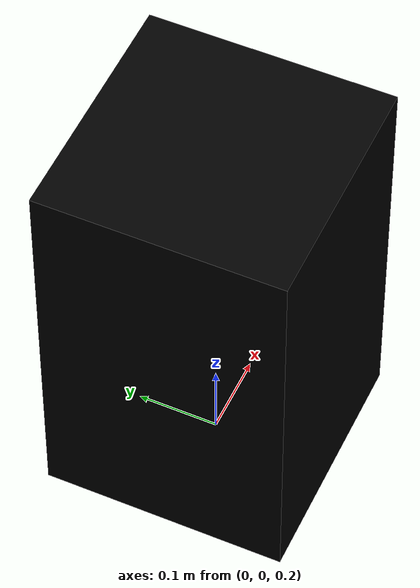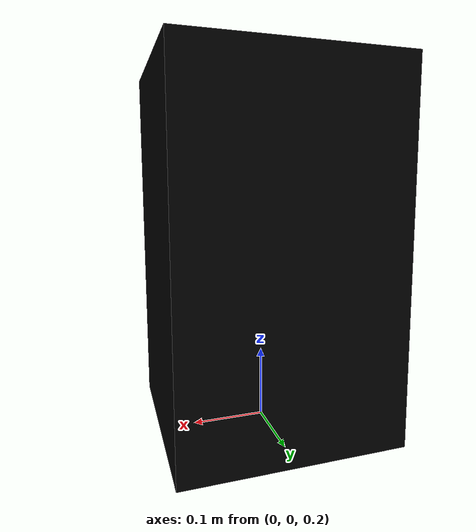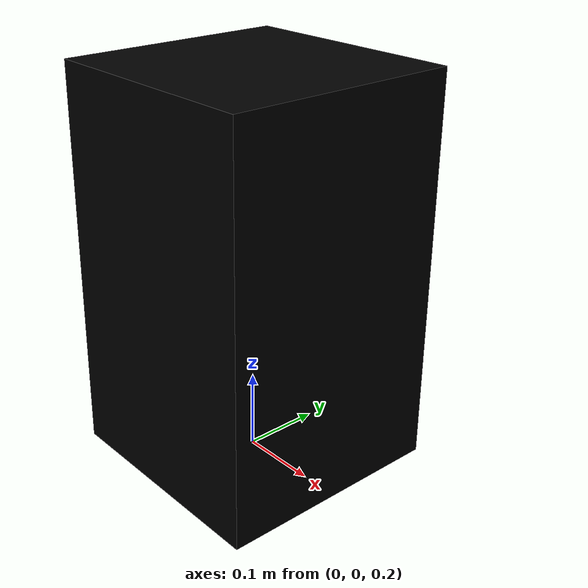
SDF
<sdf version='1.11'>
  <model name='wheeled_robot'>
    <link name='base_footprint_link'>
      <inertial>
        <pose>0 0 0.45000000000000001 0 0 0</pose>
        <mass>122.31</mass>
        <inertia>
          <ixx>3.465449999999997</ixx>
          <ixy>0</ixy>
          <ixz>0</ixz>
          <iyy>3.465449999999997</iyy>
          <iyz>0</iyz>
          <izz>1.8346499999999999</izz>
        </inertia>
      </inertial>
      <collision name='base_footprint_link_fixed_joint_lump__base_link_collision'>
        <pose>0 0 0.45000000000000001 0 0 0</pose>
        <geometry>
          <box>
            <size>0.29999999999999999 0.29999999999999999 0.5</size>
          </box>
        </geometry>
      </collision>
      <visual name='base_footprint_link_fixed_joint_lump__base_link_visual'>
        <pose>0 0 0.45000000000000001 0 0 0</pose>
        <geometry>
          <box>
            <size>0.29999999999999999 0.29999999999999999 0.5</size>
          </box>
        </geometry>
        <material>
          <diffuse>0 0 0 1</diffuse>
          <ambient>0 0 0 1</ambient>
        </material>
      </visual>
    </link>
    <plugin name='gz::sim::systems::JointStatePublisher' filename='gz-sim-joint-state-publisher-system'>
      <topic>joint_states</topic>
    </plugin>
    <frame name='base_footprint_base_joint' attached_to='base_footprint_link'>
      <pose>0 0 0.20000000000000001 0 0 0</pose>
    </frame>
    <frame name='base_link' attached_to='base_footprint_base_joint'>
      <pose>0 0 0 0 0 0</pose>
    </frame>
  </model>
</sdf>
